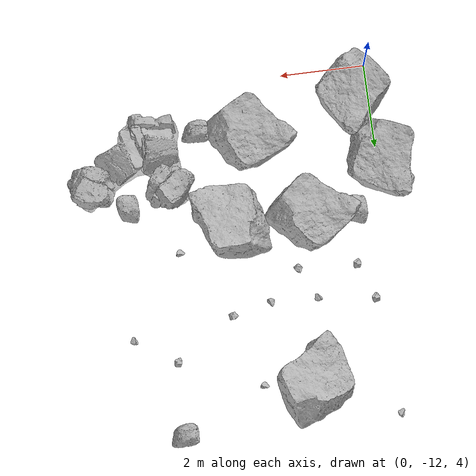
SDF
<sdf version="1.7">
 <world name="marsyard">
  <model name="Rock_28">
   <static>true</static>
   <pose>3.3293 -4.6848 4.0000 0.0000 0.0000 2.4654</pose>
   <link name="link">
    <visual name="visual">
     <geometry><mesh><uri>package://rock_generator/rocks_ws/rock_7/meshes/rock_7.stl</uri></mesh></geometry>
    </visual>
    <collision name="collision">
     <geometry><mesh><uri>package://rock_generator/rocks_ws/rock_7/meshes/rock_7.stl</uri></mesh></geometry>
    </collision>
   </link>
  </model>
  <model name="Rock_53">
   <static>true</static>
   <pose>0.2529 -3.6524 4.0000 0.0000 0.0000 -2.4462</pose>
   <link name="link">
    <visual name="visual">
     <geometry><mesh><uri>package://rock_generator/rocks_ws/rock_7/meshes/rock_7.stl</uri></mesh></geometry>
    </visual>
    <collision name="collision">
     <geometry><mesh><uri>package://rock_generator/rocks_ws/rock_7/meshes/rock_7.stl</uri></mesh></geometry>
    </collision>
   </link>
  </model>
  <model name="Rock_58">
   <static>true</static>
   <pose>5.2382 -5.4656 4.0000 0.0000 0.0000 -1.2231</pose>
   <link name="link">
    <visual name="visual">
     <geometry><mesh><uri>package://rock_generator/rocks_ws/rock_9/meshes/rock_9.stl</uri></mesh></geometry>
    </visual>
    <collision name="collision">
     <geometry><mesh><uri>package://rock_generator/rocks_ws/rock_9/meshes/rock_9.stl</uri></mesh></geometry>
    </collision>
   </link>
  </model>
  <model name="Rock_92">
   <static>true</static>
   <pose>0.4650 -6.4125 4.0000 0.0000 0.0000 -0.8018</pose>
   <link name="link">
    <visual name="visual">
     <geometry><mesh><uri>package://rock_generator/rocks_ws/rock_9/meshes/rock_9.stl</uri></mesh></geometry>
    </visual>
    <collision name="collision">
     <geometry><mesh><uri>package://rock_generator/rocks_ws/rock_9/meshes/rock_9.stl</uri></mesh></geometry>
    </collision>
   </link>
  </model>
  <model name="Rock_93">
   <static>true</static>
   <pose>0.7902 -7.2652 4.0000 0.0000 0.0000 -1.0564</pose>
   <link name="link">
    <visual name="visual">
     <geometry><mesh><uri>package://rock_generator/rocks_ws/rock_9/meshes/rock_9.stl</uri></mesh></geometry>
    </visual>
    <collision name="collision">
     <geometry><mesh><uri>package://rock_generator/rocks_ws/rock_9/meshes/rock_9.stl</uri></mesh></geometry>
    </collision>
   </link>
  </model>
  <model name="Rock_163">
   <static>true</static>
   <pose>4.1939 -10.8740 4.0000 0.0000 0.0000 -2.1609</pose>
   <link name="link">
    <visual name="visual">
     <geometry><mesh><uri>package://rock_generator/rocks_ws/rock_3/meshes/rock_3.stl</uri></mesh></geometry>
    </visual>
    <collision name="collision">
     <geometry><mesh><uri>package://rock_generator/rocks_ws/rock_3/meshes/rock_3.stl</uri></mesh></geometry>
    </collision>
   </link>
  </model>
  <model name="Rock_170">
   <static>true</static>
   <pose>6.2028 -6.0811 4.0000 0.0000 0.0000 -1.7401</pose>
   <link name="link">
    <visual name="visual">
     <geometry><mesh><uri>package://rock_generator/rocks_ws/rock_7/meshes/rock_7.stl</uri></mesh></geometry>
    </visual>
    <collision name="collision">
     <geometry><mesh><uri>package://rock_generator/rocks_ws/rock_7/meshes/rock_7.stl</uri></mesh></geometry>
    </collision>
   </link>
  </model>
  <model name="Rock_192">
   <static>true</static>
   <pose>2.9237 -6.6214 4.0000 0.0000 0.0000 1.5533</pose>
   <link name="link">
    <visual name="visual">
     <geometry><mesh><uri>package://rock_generator/rocks_ws/rock_7/meshes/rock_7.stl</uri></mesh></geometry>
    </visual>
    <collision name="collision">
     <geometry><mesh><uri>package://rock_generator/rocks_ws/rock_7/meshes/rock_7.stl</uri></mesh></geometry>
    </collision>
   </link>
  </model>
  <model name="Rock_208">
   <static>true</static>
   <pose>5.2995 -3.7659 4.0000 0.0000 0.0000 -2.0412</pose>
   <link name="link">
    <visual name="visual">
     <geometry><mesh><uri>package://rock_generator/rocks_ws/rock_3/meshes/rock_3.stl</uri></mesh></geometry>
    </visual>
    <collision name="collision">
     <geometry><mesh><uri>package://rock_generator/rocks_ws/rock_3/meshes/rock_3.stl</uri></mesh></geometry>
    </collision>
   </link>
  </model>
  <model name="Rock_232">
   <static>true</static>
   <pose>3.7660 -8.5627 4.0000 0.0000 0.0000 -2.2818</pose>
   <link name="link">
    <visual name="visual">
     <geometry><mesh><uri>package://rock_generator/rocks_ws/rock_1/meshes/rock_1.stl</uri></mesh></geometry>
    </visual>
    <collision name="collision">
     <geometry><mesh><uri>package://rock_generator/rocks_ws/rock_1/meshes/rock_1.stl</uri></mesh></geometry>
    </collision>
   </link>
  </model>
  <model name="Rock_239">
   <static>true</static>
   <pose>6.2524 -10.1797 4.0000 0.0000 0.0000 -2.4903</pose>
   <link name="link">
    <visual name="visual">
     <geometry><mesh><uri>package://rock_generator/rocks_ws/rock_2/meshes/rock_2.stl</uri></mesh></geometry>
    </visual>
    <collision name="collision">
     <geometry><mesh><uri>package://rock_generator/rocks_ws/rock_2/meshes/rock_2.stl</uri></mesh></geometry>
    </collision>
   </link>
  </model>
  <model name="Rock_246">
   <static>true</static>
   <pose>0.6791 -8.5194 4.0000 0.0000 0.0000 -0.5374</pose>
   <link name="link">
    <visual name="visual">
     <geometry><mesh><uri>package://rock_generator/rocks_ws/rock_3/meshes/rock_3.stl</uri></mesh></geometry>
    </visual>
    <collision name="collision">
     <geometry><mesh><uri>package://rock_generator/rocks_ws/rock_3/meshes/rock_3.stl</uri></mesh></geometry>
    </collision>
   </link>
  </model>
  <model name="Rock_259">
   <static>true</static>
   <pose>2.8104 -10.6788 4.0000 0.0000 0.0000 1.2828</pose>
   <link name="link">
    <visual name="visual">
     <geometry><mesh><uri>package://rock_generator/rocks_ws/rock_1/meshes/rock_1.stl</uri></mesh></geometry>
    </visual>
    <collision name="collision">
     <geometry><mesh><uri>package://rock_generator/rocks_ws/rock_1/meshes/rock_1.stl</uri></mesh></geometry>
    </collision>
   </link>
  </model>
  <model name="Rock_275">
   <static>true</static>
   <pose>6.0032 -9.1875 4.0000 0.0000 0.0000 -0.4801</pose>
   <link name="link">
    <visual name="visual">
     <geometry><mesh><uri>package://rock_generator/rocks_ws/rock_3/meshes/rock_3.stl</uri></mesh></geometry>
    </visual>
    <collision name="collision">
     <geometry><mesh><uri>package://rock_generator/rocks_ws/rock_3/meshes/rock_3.stl</uri></mesh></geometry>
    </collision>
   </link>
  </model>
  <model name="Rock_283">
   <static>true</static>
   <pose>1.8082 -6.5687 4.0000 0.0000 0.0000 -1.4811</pose>
   <link name="link">
    <visual name="visual">
     <geometry><mesh><uri>package://rock_generator/rocks_ws/rock_7/meshes/rock_7.stl</uri></mesh></geometry>
    </visual>
    <collision name="collision">
     <geometry><mesh><uri>package://rock_generator/rocks_ws/rock_7/meshes/rock_7.stl</uri></mesh></geometry>
    </collision>
   </link>
  </model>
  <model name="Rock_314">
   <static>true</static>
   <pose>0.2805 -11.2052 4.0000 0.0000 0.0000 -0.1782</pose>
   <link name="link">
    <visual name="visual">
     <geometry><mesh><uri>package://rock_generator/rocks_ws/rock_1/meshes/rock_1.stl</uri></mesh></geometry>
    </visual>
    <collision name="collision">
     <geometry><mesh><uri>package://rock_generator/rocks_ws/rock_1/meshes/rock_1.stl</uri></mesh></geometry>
    </collision>
   </link>
  </model>
  <model name="Rock_344">
   <static>true</static>
   <pose>2.1888 -4.7486 4.0000 0.0000 0.0000 2.7017</pose>
   <link name="link">
    <visual name="visual">
     <geometry><mesh><uri>package://rock_generator/rocks_ws/rock_1/meshes/rock_1.stl</uri></mesh></geometry>
    </visual>
    <collision name="collision">
     <geometry><mesh><uri>package://rock_generator/rocks_ws/rock_1/meshes/rock_1.stl</uri></mesh></geometry>
    </collision>
   </link>
  </model>
  <model name="Rock_380">
   <static>true</static>
   <pose>4.9031 -8.0254 4.0000 0.0000 0.0000 2.7170</pose>
   <link name="link">
    <visual name="visual">
     <geometry><mesh><uri>package://rock_generator/rocks_ws/rock_7/meshes/rock_7.stl</uri></mesh></geometry>
    </visual>
    <collision name="collision">
     <geometry><mesh><uri>package://rock_generator/rocks_ws/rock_7/meshes/rock_7.stl</uri></mesh></geometry>
    </collision>
   </link>
  </model>
  <model name="Rock_392">
   <static>true</static>
   <pose>1.6019 -8.6301 4.0000 0.0000 0.0000 1.5071</pose>
   <link name="link">
    <visual name="visual">
     <geometry><mesh><uri>package://rock_generator/rocks_ws/rock_1/meshes/rock_1.stl</uri></mesh></geometry>
    </visual>
    <collision name="collision">
     <geometry><mesh><uri>package://rock_generator/rocks_ws/rock_1/meshes/rock_1.stl</uri></mesh></geometry>
    </collision>
   </link>
  </model>
  <model name="Rock_418">
   <static>true</static>
   <pose>-0.2432 -9.5866 4.0000 0.0000 0.0000 0.3723</pose>
   <link name="link">
    <visual name="visual">
     <geometry><mesh><uri>package://rock_generator/rocks_ws/rock_1/meshes/rock_1.stl</uri></mesh></geometry>
    </visual>
    <collision name="collision">
     <geometry><mesh><uri>package://rock_generator/rocks_ws/rock_1/meshes/rock_1.stl</uri></mesh></geometry>
    </collision>
   </link>
  </model>
  <model name="Rock_422">
   <static>true</static>
   <pose>2.1918 -7.3250 4.0000 0.0000 0.0000 2.6672</pose>
   <link name="link">
    <visual name="visual">
     <geometry><mesh><uri>package://rock_generator/rocks_ws/rock_9/meshes/rock_9.stl</uri></mesh></geometry>
    </visual>
    <collision name="collision">
     <geometry><mesh><uri>package://rock_generator/rocks_ws/rock_9/meshes/rock_9.stl</uri></mesh></geometry>
    </collision>
   </link>
  </model>
  <model name="Rock_425">
   <static>true</static>
   <pose>3.8384 -6.3877 4.0000 0.0000 0.0000 -2.4604</pose>
   <link name="link">
    <visual name="visual">
     <geometry><mesh><uri>package://rock_generator/rocks_ws/rock_9/meshes/rock_9.stl</uri></mesh></geometry>
    </visual>
    <collision name="collision">
     <geometry><mesh><uri>package://rock_generator/rocks_ws/rock_9/meshes/rock_9.stl</uri></mesh></geometry>
    </collision>
   </link>
  </model>
  <model name="Rock_465">
   <static>true</static>
   <pose>5.0731 -10.2405 4.0000 0.0000 0.0000 -1.3688</pose>
   <link name="link">
    <visual name="visual">
     <geometry><mesh><uri>package://rock_generator/rocks_ws/rock_2/meshes/rock_2.stl</uri></mesh></geometry>
    </visual>
    <collision name="collision">
     <geometry><mesh><uri>package://rock_generator/rocks_ws/rock_2/meshes/rock_2.stl</uri></mesh></geometry>
    </collision>
   </link>
  </model>
 </world>
</sdf>
